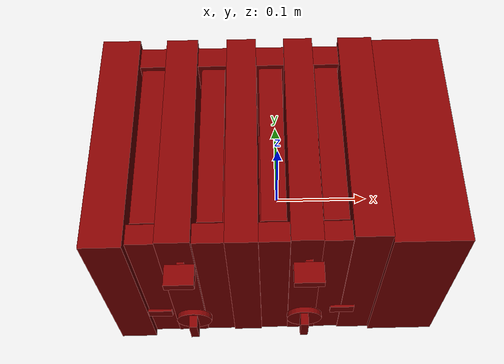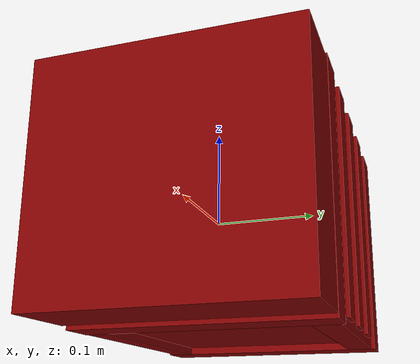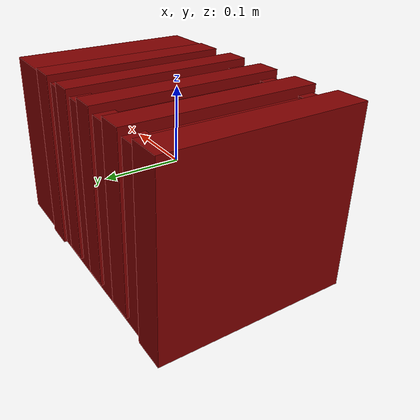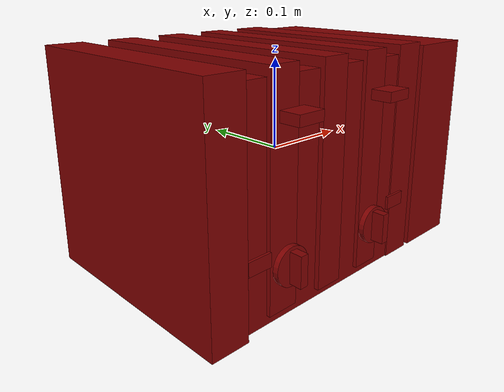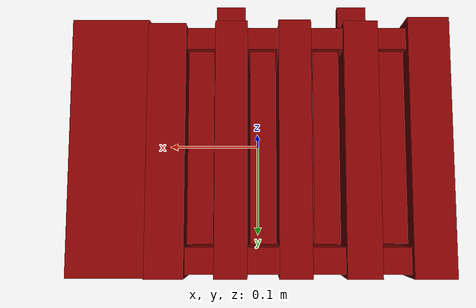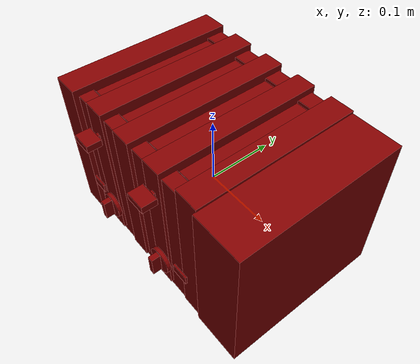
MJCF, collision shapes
<?xml version='1.0' encoding='UTF-8'?>
<mujoco model="model">
  <compiler angle="radian"/>
  <asset>
    <mesh file="visuals/Body001.obj" name="Body001_vis"/>
    <mesh file="visuals/Body002.obj" name="Body002_vis"/>
    <mesh file="visuals/Button001.obj" name="Button001_vis"/>
    <mesh file="visuals/Button002.obj" name="Button002_vis"/>
    <mesh file="visuals/Knob001.obj" name="Knob001_vis"/>
    <mesh file="visuals/Knob002.obj" name="Knob002_vis"/>
    <mesh file="visuals/Lever001.obj" name="Lever001_vis"/>
    <mesh file="visuals/Lever002.obj" name="Lever002_vis"/>
    <texture file="visuals/T_BC001.png" name="Body001_material" type="2d"/>
    <material name="Body001_material" rgba="1 1 1 1.0" texture="Body001_material" shininess="0.23812270164489746" specular="0.3103448502657381"/>
    <texture file="visuals/T_BC001.png" name="Body002_material" type="2d"/>
    <material name="Body002_material" rgba="1 1 1 1.0" texture="Body002_material" shininess="1" specular="1"/>
    <texture file="visuals/T_BC001.png" name="Button001_material" type="2d"/>
    <material name="Button001_material" rgba="1 1 1 1.0" texture="Button001_material" shininess="0.23812270164489746" specular="0.3103448502657381"/>
    <texture file="visuals/T_BC001.png" name="Button002_material" type="2d"/>
    <material name="Button002_material" rgba="1 1 1 1.0" texture="Button002_material" shininess="0.23812270164489746" specular="0.3103448502657381"/>
    <texture file="visuals/T_BC001.png" name="Knob001_material" type="2d"/>
    <material name="Knob001_material" rgba="1 1 1 1.0" texture="Knob001_material" shininess="0.23812270164489746" specular="0.3103448502657381"/>
    <texture file="visuals/T_BC001.png" name="Knob002_material" type="2d"/>
    <material name="Knob002_material" rgba="1 1 1 1.0" texture="Knob002_material" shininess="0.23812270164489746" specular="0.3103448502657381"/>
    <texture file="visuals/T_BC001.png" name="Lever001_material" type="2d"/>
    <material name="Lever001_material" rgba="1 1 1 1.0" texture="Lever001_material" shininess="0.23812270164489746" specular="0.3103448502657381"/>
    <texture file="visuals/T_BC001.png" name="Lever002_material" type="2d"/>
    <material name="Lever002_material" rgba="1 1 1 1.0" texture="Lever002_material" shininess="0.23812270164489746" specular="0.3103448502657381"/>
  </asset>
  <default>
    <default class="visual">
      <geom conaffinity="0" contype="0" group="1" type="mesh"/>
    </default>
    <default class="collision">
      <geom group="0" rgba="0.5 0 0 0.5"/>
    </default>
    <default class="spawn">
      <geom group="0" rgba="1 1 1 0.5" contype="0" conaffinity="0"/>
      <site group="0" rgba="1 1 1 0.5"/>
    </default>
    <default class="region">
      <geom group="1" conaffinity="0" contype="0" rgba="0 1 0 0"/>
    </default>
  </default>
  <worldbody>
    <body>
      <body name="object">
        <geom mesh="Body001_vis" type="mesh" solimp="0.998 0.998 0.001" solref="0.001 1" density="100" friction="0.95 0.3 0.1" class="visual" material="Body001_material"/>
        <geom class="collision" type="box" pos="0.1439463198184967 0.012131729163229465 -0.000761910923756659" size="0.03758862614631653 0.12520942091941833 0.11450684815645218" quat="1.0 0.0 0.0 0.0"/>
        <geom class="collision" type="box" pos="-0.1674545556306839 0.011771858669817448 -0.0012172926217317581" size="0.02034468576312065 0.1265401989221573 0.11838642507791519" quat="1.0 0.0 0.0 0.0"/>
        <geom class="collision" type="box" pos="-0.03762001916766167 0.0103237833827734 -0.06854473054409027" size="0.10794803500175476 0.0988459587097168 0.04325823858380318" quat="1.0 0.0 0.0 0.0"/>
        <body name="Body002">
          <geom mesh="Body002_vis" type="mesh" solimp="0.998 0.998 0.001" solref="0.001 1" density="100" friction="0.95 0.3 0.1" class="visual" material="Body002_material"/>
          <geom class="collision" type="box" pos="-0.10108710080385208 0.013594133779406548 0.003637673333287239" size="0.01688452996313572 0.12471793591976166 0.11353114992380142" quat="1.0 0.0 0.0 0.0"/>
          <geom class="collision" type="box" pos="-0.036563120782375336 0.013105718418955803 0.003637673333287239" size="0.015891553834080696 0.1252063512802124 0.11353114992380142" quat="1.0 0.0 0.0 0.0"/>
          <geom class="collision" type="box" pos="0.025495339184999466 0.013594133779406548 0.003637673333287239" size="0.015701700001955032 0.12471793591976166 0.11353114992380142" quat="1.0 0.0 0.0 0.0"/>
          <geom class="collision" type="box" pos="0.08827359229326248 0.014873852953314781 -0.0012172926217317581" size="0.01852516643702984 0.12343821674585342 0.11838647723197937" quat="1.0 0.0 0.0 0.0"/>
          <geom class="collision" type="box" pos="-0.038741689175367355 -0.09628050029277802 -0.0061980742029845715" size="0.11271996051073074 0.01070105005055666 0.11340545862913132" quat="1.0 0.0 0.0 0.0"/>
          <geom class="collision" type="box" pos="-0.038741689175367355 0.12151871621608734 -0.0059641082771122456" size="0.11271996051073074 0.012866983190178871 0.11363940685987473" quat="1.0 0.0 0.0 0.0"/>
          <body name="Button001">
            <joint axis="0.0 1.0 0.0" pos="-0.1331457644701004 -0.11272790282964706 -0.04997552931308746" limited="true" name="Button001_joint" range="0.0 0.0015" type="slide" damping="1" frictionloss="1" armature=".01" stiffness="0.05"/>
            <geom mesh="Button001_vis" type="mesh" solimp="0.998 0.998 0.001" solref="0.001 1" density="100" friction="0.95 0.3 0.1" class="visual" material="Button001_material"/>
            <geom class="collision" type="box" pos="-0.13316546380519867 -0.11343659460544586 -0.05001634359359741" size="0.013266053050756454 0.0013695938978344202 0.007134497631341219" quat="1.0 0.0 0.0 0.0"/>
          </body>
          <body name="Button002">
            <joint axis="0.0 1.0 0.0" pos="0.07051916420459747 -0.11106565594673157 -0.05005672946572304" limited="true" name="Button002_joint" range="0.0 0.0015" type="slide" damping="1" frictionloss="1" armature=".01" stiffness="0.05"/>
            <geom mesh="Button002_vis" type="mesh" solimp="0.998 0.998 0.001" solref="0.001 1" density="100" friction="0.95 0.3 0.1" class="visual" material="Button002_material"/>
            <geom class="collision" type="box" pos="0.07014790177345276 -0.11281713098287582 -0.05001634359359741" size="0.013266053050756454 0.0013695938978344202 0.007134497631341219" quat="1.0 0.0 0.0 0.0"/>
          </body>
          <body name="Knob001">
            <joint axis="0.0 1.0 0.0" pos="-0.09638330340385437 -0.11884283274412155 -0.06339429318904877" limited="true" name="Knob001_joint" range="0.0 2.2689280275926285" type="hinge" damping="0.05" armature="0.001"/>
            <geom mesh="Knob001_vis" type="mesh" solimp="0.998 0.998 0.001" solref="0.001 1" density="100" friction="0.95 0.3 0.1" class="visual" material="Knob001_material"/>
            <geom class="collision" type="box" pos="-0.096274733543396 -0.12485551834106445 -0.06385692954063416" size="0.004388941451907158 0.007150714751332998 0.01588653214275837" quat="1.0 0.0 0.0 0.0"/>
            <geom class="collision" type="cylinder" pos="-0.09634129703044891 -0.11552339792251587 -0.06405565142631531" size="0.019682612270116806 0.0029255796689540148" quat="0.7071067094802856 0.70710688829422 0.0 0.0"/>
          </body>
          <body name="Knob002">
            <joint axis="0.0 1.0 0.0" pos="0.027756499126553535 -0.11884283274412155 -0.06339429318904877" limited="true" name="Knob002_joint" range="0.0 2.2689280275926285" type="hinge" damping="0.05" armature="0.001"/>
            <geom mesh="Knob002_vis" type="mesh" solimp="0.998 0.998 0.001" solref="0.001 1" density="100" friction="0.95 0.3 0.1" class="visual" material="Knob002_material"/>
            <geom class="collision" type="box" pos="0.02775188907980919 -0.12485551834106445 -0.06385692954063416" size="0.0043889423832297325 0.0071507166139781475 0.015886537730693817" quat="1.0 0.0 0.0 0.0"/>
            <geom class="collision" type="cylinder" pos="0.028297219425439835 -0.11552339792251587 -0.06405565142631531" size="0.019682612270116806 0.0029255796689540148" quat="0.7071067094802856 0.70710688829422 0.0 0.0"/>
          </body>
          <body name="Lever001">
            <joint axis="0.0 0.0 -1.0" pos="-0.09793062508106232 -0.11557408422231674 0.07581935822963715" limited="true" name="Lever001_joint" range="0.0 0.092" type="slide" damping="1" frictionloss="1" armature=".01" stiffness="1" springref="-0.8"/>
            <geom mesh="Lever001_vis" type="mesh" solimp="0.998 0.998 0.001" solref="0.001 1" density="100" friction="0.95 0.3 0.1" class="visual" material="Lever001_material"/>
            <geom class="collision" type="box" pos="-0.09771833568811417 -0.12681913375854492 0.07564803212881088" size="0.014820103533565998 0.010940365493297577 0.005142752081155777" quat="1.0 0.0 0.0 0.0" name="sideL_lever_knob"/>
            <geom class="collision" type="box" pos="-0.06726542115211487 0.01115663256496191 0.10369009524583817" size="0.012550000101327896 0.0946236252784729 0.001750519615598023" quat="1.0 0.0 0.0 0.0" name="sideL_slotR_floor"/>
            <geom class="collision" type="box" pos="-0.13172192871570587 0.01115663256496191 0.10369009524583817" size="0.012550000101327896 0.0946236252784729 0.001750519615598023" quat="1.0 0.0 0.0 0.0" name="sideL_slotL_floor"/>
            <geom class="collision" type="box" pos="-0.09744882583618164 -0.12029843777418137 0.07514648884534836" size="0.0036457490641623735 0.008290039375424385 0.0026350526604801416" quat="1.0 0.0 0.0 0.0"/>
          </body>
          <body name="Lever002">
            <joint axis="0.0 0.0 -1.0" pos="0.027698630467057228 -0.11557408422231674 0.07581935822963715" limited="true" name="Lever002_joint" range="0.0 0.092" type="slide" damping="1" frictionloss="1" armature=".01" stiffness="1" springref="-0.8"/>
            <geom mesh="Lever002_vis" type="mesh" solimp="0.998 0.998 0.001" solref="0.001 1" density="100" friction="0.95 0.3 0.1" class="visual" material="Lever002_material"/>
            <geom class="collision" type="box" pos="0.027597079053521156 -0.12693601846694946 0.07564803212881088" size="0.014820103533565998 0.010940365493297577 0.005142752081155777" quat="1.0 0.0 0.0 0.0" name="sideR_lever_knob"/>
            <geom class="collision" type="box" pos="0.0553230382502079 0.01115663256496191 0.10369009524583817" size="0.012550000101327896 0.0946236252784729 0.001750519615598023" quat="1.0 0.0 0.0 0.0" name="sideR_slotR_floor"/>
            <geom class="collision" type="box" pos="-0.005435087252408266 0.01115663256496191 0.10369009524583817" size="0.012550000101327896 0.0946236252784729 0.001750519615598023" quat="1.0 0.0 0.0 0.0" name="sideR_slotL_floor"/>
            <geom class="collision" type="box" pos="0.028356140479445457 -0.12029843777418137 0.07514648884534836" size="0.0036457490641623735 0.008290039375424385 0.0026350526604801416" quat="1.0 0.0 0.0 0.0"/>
          </body>
        </body>
        <geom class="region" name="reg_main" type="box" pos="-3.725290298461914e-09 0.01023682951927185 0.0" size="0.18493570387363434 0.1274920552968979 0.1189117282629013"/>
      </body>
    </body>
  </worldbody>
  <actuator>
    <motor name="Button001_joint_actuator" joint="Button001_joint" gear="0.1"/>
    <motor name="Button002_joint_actuator" joint="Button002_joint" gear="0.1"/>
    <motor name="Knob001_joint_actuator" joint="Knob001_joint" gear="10"/>
    <motor name="Knob002_joint_actuator" joint="Knob002_joint" gear="10"/>
    <motor name="Lever001_joint_actuator" joint="Lever001_joint" gear="5"/>
    <motor name="Lever002_joint_actuator" joint="Lever002_joint" gear="5"/>
  </actuator>
</mujoco>
